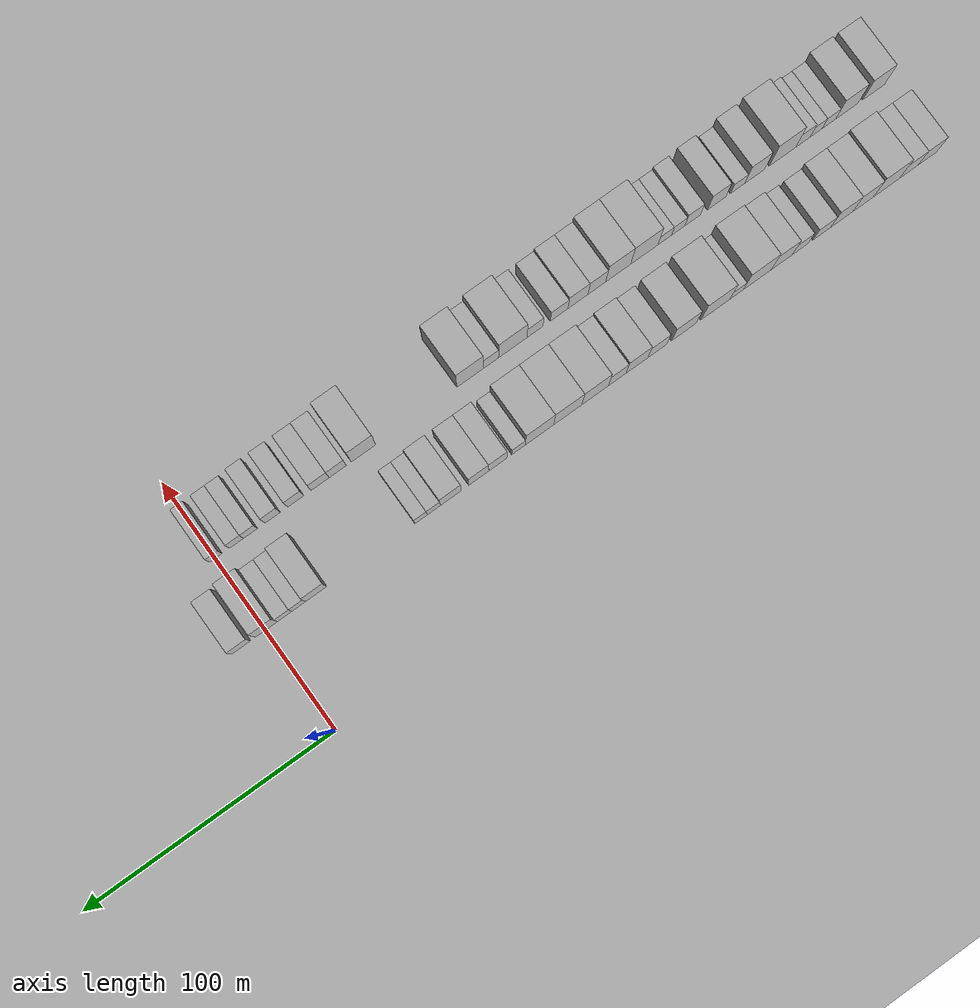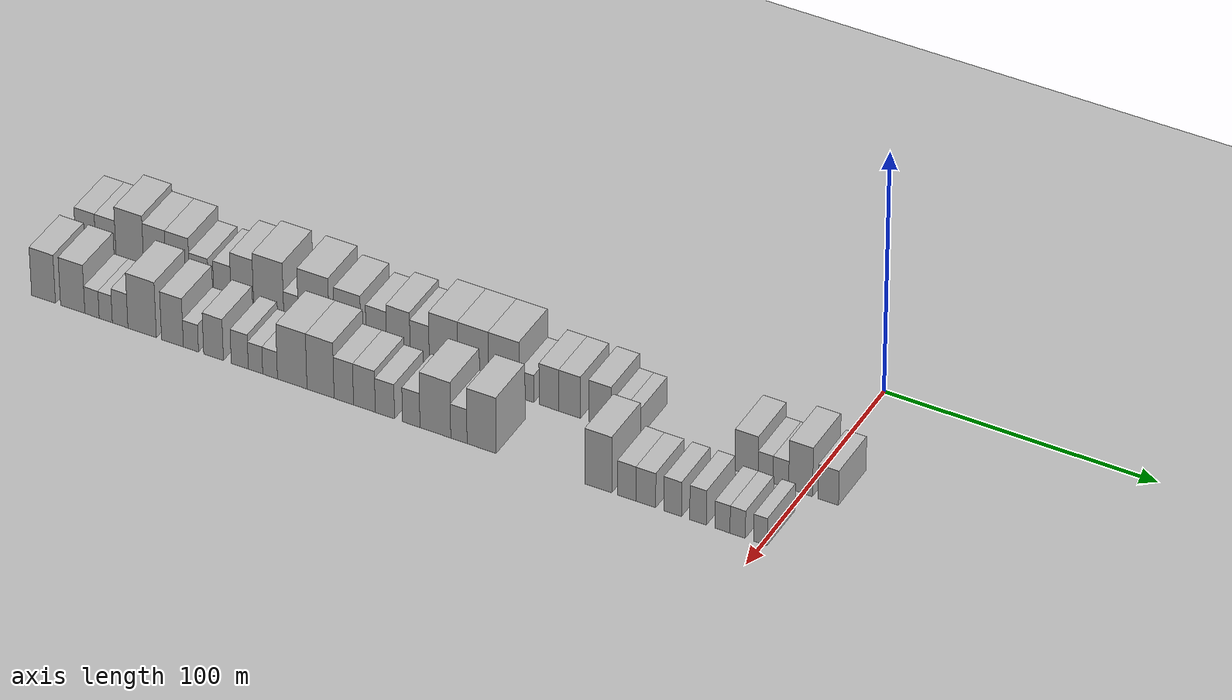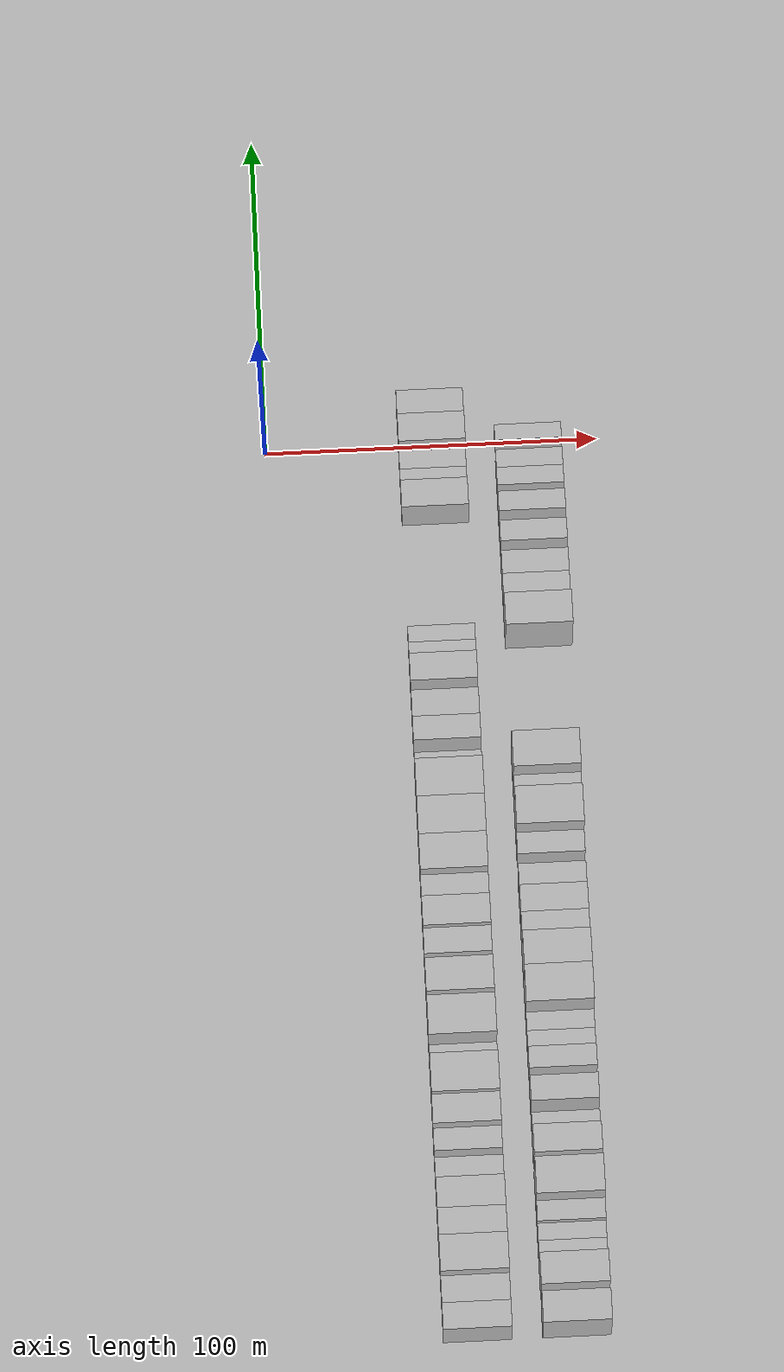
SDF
<sdf version="1.6">
 <world name="default">
  <include><name>ground_plane_1</name><uri>model://HANNAS_ground_plane</uri></include>
  <include>
   <name>ground_plane_2</name>
   <uri>model://HANNAS_ground_plane</uri>
   <pose>100 0 0  0 0 0</pose>
  </include>
  <model name="building_1">
   <static>1</static>
   <pose>50.0000 -272.0312 0 0.000000 0.000000 0.000000</pose>
   <link name="link">
    <pose>0 0 9.00 0 0 0</pose>
    <collision name="collision"><geometry><box><size>20.0000 7.9376 18.0000</size></box></geometry></collision>
    <visual name="visual">
     <cast_shadows>0</cast_shadows>
     <geometry><box><size>20.0000 7.9376 18.0000</size></box></geometry>
     <material>
      <script>
       <uri>model://HANNAS_wall/materials/scripts</uri>
       <uri>model://HANNAS_wall/materials/textures</uri>
       <name>vrc/HANNAS_wall</name>
      </script>
     </material>
    </visual>
   </link>
  </model>
  <model name="building_2">
   <static>1</static>
   <pose>50.0000 -264.0821 0 0.000000 0.000000 0.000000</pose>
   <link name="link">
    <pose>0 0 9.00 0 0 0</pose>
    <collision name="collision"><geometry><box><size>20.0000 7.9607 18.0000</size></box></geometry></collision>
    <visual name="visual">
     <cast_shadows>0</cast_shadows>
     <geometry><box><size>20.0000 7.9607 18.0000</size></box></geometry>
     <material>
      <script>
       <uri>model://HANNAS_wall/materials/scripts</uri>
       <uri>model://HANNAS_wall/materials/textures</uri>
       <name>vrc/HANNAS_wall</name>
      </script>
     </material>
    </visual>
   </link>
  </model>
  <model name="building_3">
   <static>1</static>
   <pose>50.0000 -254.6737 0 0.000000 0.000000 0.000000</pose>
   <link name="link">
    <pose>0 0 12.00 0 0 0</pose>
    <collision name="collision"><geometry><box><size>20.0000 10.8561 24.0000</size></box></geometry></collision>
    <visual name="visual">
     <cast_shadows>0</cast_shadows>
     <geometry><box><size>20.0000 10.8561 24.0000</size></box></geometry>
     <material>
      <script>
       <uri>model://HANNAS_wall/materials/scripts</uri>
       <uri>model://HANNAS_wall/materials/textures</uri>
       <name>vrc/HANNAS_wall</name>
      </script>
     </material>
    </visual>
   </link>
  </model>
  <model name="building_4">
   <static>1</static>
   <pose>50.0000 -244.8792 0 0.000000 0.000000 0.000000</pose>
   <link name="link">
    <pose>0 0 10.50 0 0 0</pose>
    <collision name="collision"><geometry><box><size>20.0000 8.7328 21.0000</size></box></geometry></collision>
    <visual name="visual">
     <cast_shadows>0</cast_shadows>
     <geometry><box><size>20.0000 8.7328 21.0000</size></box></geometry>
     <material>
      <script>
       <uri>model://HANNAS_wall/materials/scripts</uri>
       <uri>model://HANNAS_wall/materials/textures</uri>
       <name>vrc/HANNAS_wall</name>
      </script>
     </material>
    </visual>
   </link>
  </model>
  <model name="building_5">
   <static>1</static>
   <pose>50.0000 -235.9387 0 0.000000 0.000000 0.000000</pose>
   <link name="link">
    <pose>0 0 10.50 0 0 0</pose>
    <collision name="collision"><geometry><box><size>20.0000 9.1483 21.0000</size></box></geometry></collision>
    <visual name="visual">
     <cast_shadows>0</cast_shadows>
     <geometry><box><size>20.0000 9.1483 21.0000</size></box></geometry>
     <material>
      <script>
       <uri>model://HANNAS_wall/materials/scripts</uri>
       <uri>model://HANNAS_wall/materials/textures</uri>
       <name>vrc/HANNAS_wall</name>
      </script>
     </material>
    </visual>
   </link>
  </model>
  <model name="building_6">
   <static>1</static>
   <pose>50.0000 -227.6828 0 0.000000 0.000000 0.000000</pose>
   <link name="link">
    <pose>0 0 7.50 0 0 0</pose>
    <collision name="collision"><geometry><box><size>20.0000 7.3636 15.0000</size></box></geometry></collision>
    <visual name="visual">
     <cast_shadows>0</cast_shadows>
     <geometry><box><size>20.0000 7.3636 15.0000</size></box></geometry>
     <material>
      <script>
       <uri>model://HANNAS_wall/materials/scripts</uri>
       <uri>model://HANNAS_wall/materials/textures</uri>
       <name>vrc/HANNAS_wall</name>
      </script>
     </material>
    </visual>
   </link>
  </model>
  <model name="building_7">
   <static>1</static>
   <pose>50.0000 -218.6321 0 0.000000 0.000000 0.000000</pose>
   <link name="link">
    <pose>0 0 7.50 0 0 0</pose>
    <collision name="collision"><geometry><box><size>20.0000 6.7378 15.0000</size></box></geometry></collision>
    <visual name="visual">
     <cast_shadows>0</cast_shadows>
     <geometry><box><size>20.0000 6.7378 15.0000</size></box></geometry>
     <material>
      <script>
       <uri>model://HANNAS_wall/materials/scripts</uri>
       <uri>model://HANNAS_wall/materials/textures</uri>
       <name>vrc/HANNAS_wall</name>
      </script>
     </material>
    </visual>
   </link>
  </model>
  <model name="building_8">
   <static>1</static>
   <pose>50.0000 -210.8865 0 0.000000 0.000000 0.000000</pose>
   <link name="link">
    <pose>0 0 10.50 0 0 0</pose>
    <collision name="collision"><geometry><box><size>20.0000 8.7534 21.0000</size></box></geometry></collision>
    <visual name="visual">
     <cast_shadows>0</cast_shadows>
     <geometry><box><size>20.0000 8.7534 21.0000</size></box></geometry>
     <material>
      <script>
       <uri>model://HANNAS_wall/materials/scripts</uri>
       <uri>model://HANNAS_wall/materials/textures</uri>
       <name>vrc/HANNAS_wall</name>
      </script>
     </material>
    </visual>
   </link>
  </model>
  <model name="building_9">
   <static>1</static>
   <pose>50.0000 -200.6909 0 0.000000 0.000000 0.000000</pose>
   <link name="link">
    <pose>0 0 12.00 0 0 0</pose>
    <collision name="collision"><geometry><box><size>20.0000 11.6380 24.0000</size></box></geometry></collision>
    <visual name="visual">
     <cast_shadows>0</cast_shadows>
     <geometry><box><size>20.0000 11.6380 24.0000</size></box></geometry>
     <material>
      <script>
       <uri>model://HANNAS_wall/materials/scripts</uri>
       <uri>model://HANNAS_wall/materials/textures</uri>
       <name>vrc/HANNAS_wall</name>
      </script>
     </material>
    </visual>
   </link>
  </model>
  <model name="building_10">
   <static>1</static>
   <pose>50.0000 -192.0684 0 0.000000 0.000000 0.000000</pose>
   <link name="link">
    <pose>0 0 6.00 0 0 0</pose>
    <collision name="collision"><geometry><box><size>20.0000 5.6070 12.0000</size></box></geometry></collision>
    <visual name="visual">
     <cast_shadows>0</cast_shadows>
     <geometry><box><size>20.0000 5.6070 12.0000</size></box></geometry>
     <material>
      <script>
       <uri>model://HANNAS_wall/materials/scripts</uri>
       <uri>model://HANNAS_wall/materials/textures</uri>
       <name>vrc/HANNAS_wall</name>
      </script>
     </material>
    </visual>
   </link>
  </model>
  <model name="building_11">
   <static>1</static>
   <pose>50.0000 -183.3076 0 0.000000 0.000000 0.000000</pose>
   <link name="link">
    <pose>0 0 12.00 0 0 0</pose>
    <collision name="collision"><geometry><box><size>20.0000 11.9145 24.0000</size></box></geometry></collision>
    <visual name="visual">
     <cast_shadows>0</cast_shadows>
     <geometry><box><size>20.0000 11.9145 24.0000</size></box></geometry>
     <material>
      <script>
       <uri>model://HANNAS_wall/materials/scripts</uri>
       <uri>model://HANNAS_wall/materials/textures</uri>
       <name>vrc/HANNAS_wall</name>
      </script>
     </material>
    </visual>
   </link>
  </model>
  <model name="building_12">
   <static>1</static>
   <pose>50.0000 -170.2685 0 0.000000 0.000000 0.000000</pose>
   <link name="link">
    <pose>0 0 10.50 0 0 0</pose>
    <collision name="collision"><geometry><box><size>20.0000 10.1637 21.0000</size></box></geometry></collision>
    <visual name="visual">
     <cast_shadows>0</cast_shadows>
     <geometry><box><size>20.0000 10.1637 21.0000</size></box></geometry>
     <material>
      <script>
       <uri>model://HANNAS_wall/materials/scripts</uri>
       <uri>model://HANNAS_wall/materials/textures</uri>
       <name>vrc/HANNAS_wall</name>
      </script>
     </material>
    </visual>
   </link>
  </model>
  <model name="building_13">
   <static>1</static>
   <pose>50.0000 -159.2767 0 0.000000 0.000000 0.000000</pose>
   <link name="link">
    <pose>0 0 9.00 0 0 0</pose>
    <collision name="collision"><geometry><box><size>20.0000 7.8200 18.0000</size></box></geometry></collision>
    <visual name="visual">
     <cast_shadows>0</cast_shadows>
     <geometry><box><size>20.0000 7.8200 18.0000</size></box></geometry>
     <material>
      <script>
       <uri>model://HANNAS_wall/materials/scripts</uri>
       <uri>model://HANNAS_wall/materials/textures</uri>
       <name>vrc/HANNAS_wall</name>
      </script>
     </material>
    </visual>
   </link>
  </model>
  <model name="building_14">
   <static>1</static>
   <pose>50.0000 -150.8688 0 0.000000 0.000000 0.000000</pose>
   <link name="link">
    <pose>0 0 10.50 0 0 0</pose>
    <collision name="collision"><geometry><box><size>20.0000 8.9957 21.0000</size></box></geometry></collision>
    <visual name="visual">
     <cast_shadows>0</cast_shadows>
     <geometry><box><size>20.0000 8.9957 21.0000</size></box></geometry>
     <material>
      <script>
       <uri>model://HANNAS_wall/materials/scripts</uri>
       <uri>model://HANNAS_wall/materials/textures</uri>
       <name>vrc/HANNAS_wall</name>
      </script>
     </material>
    </visual>
   </link>
  </model>
  <model name="building_15">
   <static>1</static>
   <pose>50.0000 -142.7405 0 0.000000 0.000000 0.000000</pose>
   <link name="link">
    <pose>0 0 9.00 0 0 0</pose>
    <collision name="collision"><geometry><box><size>20.0000 7.2610 18.0000</size></box></geometry></collision>
    <visual name="visual">
     <cast_shadows>0</cast_shadows>
     <geometry><box><size>20.0000 7.2610 18.0000</size></box></geometry>
     <material>
      <script>
       <uri>model://HANNAS_wall/materials/scripts</uri>
       <uri>model://HANNAS_wall/materials/textures</uri>
       <name>vrc/HANNAS_wall</name>
      </script>
     </material>
    </visual>
   </link>
  </model>
  <model name="building_16">
   <static>1</static>
   <pose>50.0000 -133.6735 0 0.000000 0.000000 0.000000</pose>
   <link name="link">
    <pose>0 0 12.00 0 0 0</pose>
    <collision name="collision"><geometry><box><size>20.0000 10.8730 24.0000</size></box></geometry></collision>
    <visual name="visual">
     <cast_shadows>0</cast_shadows>
     <geometry><box><size>20.0000 10.8730 24.0000</size></box></geometry>
     <material>
      <script>
       <uri>model://HANNAS_wall/materials/scripts</uri>
       <uri>model://HANNAS_wall/materials/textures</uri>
       <name>vrc/HANNAS_wall</name>
      </script>
     </material>
    </visual>
   </link>
  </model>
  <model name="building_17">
   <static>1</static>
   <pose>50.0000 -122.4507 0 0.000000 0.000000 0.000000</pose>
   <link name="link">
    <pose>0 0 12.00 0 0 0</pose>
    <collision name="collision"><geometry><box><size>20.0000 11.5726 24.0000</size></box></geometry></collision>
    <visual name="visual">
     <cast_shadows>0</cast_shadows>
     <geometry><box><size>20.0000 11.5726 24.0000</size></box></geometry>
     <material>
      <script>
       <uri>model://HANNAS_wall/materials/scripts</uri>
       <uri>model://HANNAS_wall/materials/textures</uri>
       <name>vrc/HANNAS_wall</name>
      </script>
     </material>
    </visual>
   </link>
  </model>
  <model name="building_18">
   <static>1</static>
   <pose>50.0000 -110.8684 0 0.000000 0.000000 0.000000</pose>
   <link name="link">
    <pose>0 0 12.00 0 0 0</pose>
    <collision name="collision"><geometry><box><size>20.0000 11.5920 24.0000</size></box></geometry></collision>
    <visual name="visual">
     <cast_shadows>0</cast_shadows>
     <geometry><box><size>20.0000 11.5920 24.0000</size></box></geometry>
     <material>
      <script>
       <uri>model://HANNAS_wall/materials/scripts</uri>
       <uri>model://HANNAS_wall/materials/textures</uri>
       <name>vrc/HANNAS_wall</name>
      </script>
     </material>
    </visual>
   </link>
  </model>
  <model name="building_19">
   <static>1</static>
   <pose>50.0000 -102.3278 0 0.000000 0.000000 0.000000</pose>
   <link name="link">
    <pose>0 0 6.00 0 0 0</pose>
    <collision name="collision"><geometry><box><size>20.0000 5.4891 12.0000</size></box></geometry></collision>
    <visual name="visual">
     <cast_shadows>0</cast_shadows>
     <geometry><box><size>20.0000 5.4891 12.0000</size></box></geometry>
     <material>
      <script>
       <uri>model://HANNAS_wall/materials/scripts</uri>
       <uri>model://HANNAS_wall/materials/textures</uri>
       <name>vrc/HANNAS_wall</name>
      </script>
     </material>
    </visual>
   </link>
  </model>
  <model name="building_20">
   <static>1</static>
   <pose>50.0000 -93.8886 0 0.000000 0.000000 0.000000</pose>
   <link name="link">
    <pose>0 0 9.00 0 0 0</pose>
    <collision name="collision"><geometry><box><size>20.0000 7.3894 18.0000</size></box></geometry></collision>
    <visual name="visual">
     <cast_shadows>0</cast_shadows>
     <geometry><box><size>20.0000 7.3894 18.0000</size></box></geometry>
     <material>
      <script>
       <uri>model://HANNAS_wall/materials/scripts</uri>
       <uri>model://HANNAS_wall/materials/textures</uri>
       <name>vrc/HANNAS_wall</name>
      </script>
     </material>
    </visual>
   </link>
  </model>
  <model name="building_21">
   <static>1</static>
   <pose>50.0000 -86.1221 0 0.000000 0.000000 0.000000</pose>
   <link name="link">
    <pose>0 0 9.00 0 0 0</pose>
    <collision name="collision"><geometry><box><size>20.0000 8.1436 18.0000</size></box></geometry></collision>
    <visual name="visual">
     <cast_shadows>0</cast_shadows>
     <geometry><box><size>20.0000 8.1436 18.0000</size></box></geometry>
     <material>
      <script>
       <uri>model://HANNAS_wall/materials/scripts</uri>
       <uri>model://HANNAS_wall/materials/textures</uri>
       <name>vrc/HANNAS_wall</name>
      </script>
     </material>
    </visual>
   </link>
  </model>
  <model name="building_22">
   <static>1</static>
   <pose>50.0000 -74.8031 0 0.000000 0.000000 0.000000</pose>
   <link name="link">
    <pose>0 0 9.00 0 0 0</pose>
    <collision name="collision"><geometry><box><size>20.0000 8.4944 18.0000</size></box></geometry></collision>
    <visual name="visual">
     <cast_shadows>0</cast_shadows>
     <geometry><box><size>20.0000 8.4944 18.0000</size></box></geometry>
     <material>
      <script>
       <uri>model://HANNAS_wall/materials/scripts</uri>
       <uri>model://HANNAS_wall/materials/textures</uri>
       <name>vrc/HANNAS_wall</name>
      </script>
     </material>
    </visual>
   </link>
  </model>
  <model name="building_23">
   <static>1</static>
   <pose>50.0000 -67.8921 0 0.000000 0.000000 0.000000</pose>
   <link name="link">
    <pose>0 0 6.00 0 0 0</pose>
    <collision name="collision"><geometry><box><size>20.0000 5.3276 12.0000</size></box></geometry></collision>
    <visual name="visual">
     <cast_shadows>0</cast_shadows>
     <geometry><box><size>20.0000 5.3276 12.0000</size></box></geometry>
     <material>
      <script>
       <uri>model://HANNAS_wall/materials/scripts</uri>
       <uri>model://HANNAS_wall/materials/textures</uri>
       <name>vrc/HANNAS_wall</name>
      </script>
     </material>
    </visual>
   </link>
  </model>
  <model name="building_24">
   <static>1</static>
   <pose>50.0000 -62.7236 0 0.000000 0.000000 0.000000</pose>
   <link name="link">
    <pose>0 0 6.00 0 0 0</pose>
    <collision name="collision"><geometry><box><size>20.0000 5.0095 12.0000</size></box></geometry></collision>
    <visual name="visual">
     <cast_shadows>0</cast_shadows>
     <geometry><box><size>20.0000 5.0095 12.0000</size></box></geometry>
     <material>
      <script>
       <uri>model://HANNAS_wall/materials/scripts</uri>
       <uri>model://HANNAS_wall/materials/textures</uri>
       <name>vrc/HANNAS_wall</name>
      </script>
     </material>
    </visual>
   </link>
  </model>
  <model name="building_25">
   <static>1</static>
   <pose>50.0000 -20.4532 0 0.000000 0.000000 0.000000</pose>
   <link name="link">
    <pose>0 0 9.00 0 0 0</pose>
    <collision name="collision"><geometry><box><size>20.0000 8.5104 18.0000</size></box></geometry></collision>
    <visual name="visual">
     <cast_shadows>0</cast_shadows>
     <geometry><box><size>20.0000 8.5104 18.0000</size></box></geometry>
     <material>
      <script>
       <uri>model://HANNAS_wall/materials/scripts</uri>
       <uri>model://HANNAS_wall/materials/textures</uri>
       <name>vrc/HANNAS_wall</name>
      </script>
     </material>
    </visual>
   </link>
  </model>
  <model name="building_26">
   <static>1</static>
   <pose>50.0000 -13.4465 0 0.000000 0.000000 0.000000</pose>
   <link name="link">
    <pose>0 0 6.00 0 0 0</pose>
    <collision name="collision"><geometry><box><size>20.0000 5.5029 12.0000</size></box></geometry></collision>
    <visual name="visual">
     <cast_shadows>0</cast_shadows>
     <geometry><box><size>20.0000 5.5029 12.0000</size></box></geometry>
     <material>
      <script>
       <uri>model://HANNAS_wall/materials/scripts</uri>
       <uri>model://HANNAS_wall/materials/textures</uri>
       <name>vrc/HANNAS_wall</name>
      </script>
     </material>
    </visual>
   </link>
  </model>
  <model name="building_27">
   <static>1</static>
   <pose>50.0000 -7.8322 0 0.000000 0.000000 0.000000</pose>
   <link name="link">
    <pose>0 0 6.00 0 0 0</pose>
    <collision name="collision"><geometry><box><size>20.0000 5.7257 12.0000</size></box></geometry></collision>
    <visual name="visual">
     <cast_shadows>0</cast_shadows>
     <geometry><box><size>20.0000 5.7257 12.0000</size></box></geometry>
     <material>
      <script>
       <uri>model://HANNAS_wall/materials/scripts</uri>
       <uri>model://HANNAS_wall/materials/textures</uri>
       <name>vrc/HANNAS_wall</name>
      </script>
     </material>
    </visual>
   </link>
  </model>
  <model name="building_28">
   <static>1</static>
   <pose>50.0000 -0.5983 0 0.000000 0.000000 0.000000</pose>
   <link name="link">
    <pose>0 0 10.50 0 0 0</pose>
    <collision name="collision"><geometry><box><size>20.0000 8.7422 21.0000</size></box></geometry></collision>
    <visual name="visual">
     <cast_shadows>0</cast_shadows>
     <geometry><box><size>20.0000 8.7422 21.0000</size></box></geometry>
     <material>
      <script>
       <uri>model://HANNAS_wall/materials/scripts</uri>
       <uri>model://HANNAS_wall/materials/textures</uri>
       <name>vrc/HANNAS_wall</name>
      </script>
     </material>
    </visual>
   </link>
  </model>
  <model name="building_29">
   <static>1</static>
   <pose>50.0000 9.5227 0 0.000000 0.000000 0.000000</pose>
   <link name="link">
    <pose>0 0 7.50 0 0 0</pose>
    <collision name="collision"><geometry><box><size>20.0000 7.4998 15.0000</size></box></geometry></collision>
    <visual name="visual">
     <cast_shadows>0</cast_shadows>
     <geometry><box><size>20.0000 7.4998 15.0000</size></box></geometry>
     <material>
      <script>
       <uri>model://HANNAS_wall/materials/scripts</uri>
       <uri>model://HANNAS_wall/materials/textures</uri>
       <name>vrc/HANNAS_wall</name>
      </script>
     </material>
    </visual>
   </link>
  </model>
  <model name="building_60">
   <static>1</static>
   <pose>79.0000 -271.3377 0 0.000000 0.000000 0.000000</pose>
   <link name="link">
    <pose>0 0 10.50 0 0 0</pose>
    <collision name="collision"><geometry><box><size>20.0000 9.3246 21.0000</size></box></geometry></collision>
    <visual name="visual">
     <cast_shadows>0</cast_shadows>
     <geometry><box><size>20.0000 9.3246 21.0000</size></box></geometry>
     <material>
      <script>
       <uri>model://HANNAS_wall/materials/scripts</uri>
       <uri>model://HANNAS_wall/materials/textures</uri>
       <name>vrc/HANNAS_wall</name>
      </script>
     </material>
    </visual>
   </link>
  </model>
  <model name="building_61">
   <static>1</static>
   <pose>79.0000 -259.9252 0 0.000000 0.000000 0.000000</pose>
   <link name="link">
    <pose>0 0 10.50 0 0 0</pose>
    <collision name="collision"><geometry><box><size>20.0000 9.5004 21.0000</size></box></geometry></collision>
    <visual name="visual">
     <cast_shadows>0</cast_shadows>
     <geometry><box><size>20.0000 9.5004 21.0000</size></box></geometry>
     <material>
      <script>
       <uri>model://HANNAS_wall/materials/scripts</uri>
       <uri>model://HANNAS_wall/materials/textures</uri>
       <name>vrc/HANNAS_wall</name>
      </script>
     </material>
    </visual>
   </link>
  </model>
  <model name="building_62">
   <static>1</static>
   <pose>79.0000 -252.3836 0 0.000000 0.000000 0.000000</pose>
   <link name="link">
    <pose>0 0 6.00 0 0 0</pose>
    <collision name="collision"><geometry><box><size>20.0000 5.5828 12.0000</size></box></geometry></collision>
    <visual name="visual">
     <cast_shadows>0</cast_shadows>
     <geometry><box><size>20.0000 5.5828 12.0000</size></box></geometry>
     <material>
      <script>
       <uri>model://HANNAS_wall/materials/scripts</uri>
       <uri>model://HANNAS_wall/materials/textures</uri>
       <name>vrc/HANNAS_wall</name>
      </script>
     </material>
    </visual>
   </link>
  </model>
  <model name="building_63">
   <static>1</static>
   <pose>79.0000 -247.0357 0 0.000000 0.000000 0.000000</pose>
   <link name="link">
    <pose>0 0 6.00 0 0 0</pose>
    <collision name="collision"><geometry><box><size>20.0000 5.1130 12.0000</size></box></geometry></collision>
    <visual name="visual">
     <cast_shadows>0</cast_shadows>
     <geometry><box><size>20.0000 5.1130 12.0000</size></box></geometry>
     <material>
      <script>
       <uri>model://HANNAS_wall/materials/scripts</uri>
       <uri>model://HANNAS_wall/materials/textures</uri>
       <name>vrc/HANNAS_wall</name>
      </script>
     </material>
    </visual>
   </link>
  </model>
  <model name="building_64">
   <static>1</static>
   <pose>79.0000 -241.4400 0 0.000000 0.000000 0.000000</pose>
   <link name="link">
    <pose>0 0 7.50 0 0 0</pose>
    <collision name="collision"><geometry><box><size>20.0000 6.0784 15.0000</size></box></geometry></collision>
    <visual name="visual">
     <cast_shadows>0</cast_shadows>
     <geometry><box><size>20.0000 6.0784 15.0000</size></box></geometry>
     <material>
      <script>
       <uri>model://HANNAS_wall/materials/scripts</uri>
       <uri>model://HANNAS_wall/materials/textures</uri>
       <name>vrc/HANNAS_wall</name>
      </script>
     </material>
    </visual>
   </link>
  </model>
  <model name="building_65">
   <static>1</static>
   <pose>79.0000 -232.8782 0 0.000000 0.000000 0.000000</pose>
   <link name="link">
    <pose>0 0 12.00 0 0 0</pose>
    <collision name="collision"><geometry><box><size>20.0000 11.0453 24.0000</size></box></geometry></collision>
    <visual name="visual">
     <cast_shadows>0</cast_shadows>
     <geometry><box><size>20.0000 11.0453 24.0000</size></box></geometry>
     <material>
      <script>
       <uri>model://HANNAS_wall/materials/scripts</uri>
       <uri>model://HANNAS_wall/materials/textures</uri>
       <name>vrc/HANNAS_wall</name>
      </script>
     </material>
    </visual>
   </link>
  </model>
  <model name="building_66">
   <static>1</static>
   <pose>79.0000 -221.1347 0 0.000000 0.000000 0.000000</pose>
   <link name="link">
    <pose>0 0 10.50 0 0 0</pose>
    <collision name="collision"><geometry><box><size>20.0000 8.4416 21.0000</size></box></geometry></collision>
    <visual name="visual">
     <cast_shadows>0</cast_shadows>
     <geometry><box><size>20.0000 8.4416 21.0000</size></box></geometry>
     <material>
      <script>
       <uri>model://HANNAS_wall/materials/scripts</uri>
       <uri>model://HANNAS_wall/materials/textures</uri>
       <name>vrc/HANNAS_wall</name>
      </script>
     </material>
    </visual>
   </link>
  </model>
  <model name="building_67">
   <static>1</static>
   <pose>79.0000 -214.0013 0 0.000000 0.000000 0.000000</pose>
   <link name="link">
    <pose>0 0 6.00 0 0 0</pose>
    <collision name="collision"><geometry><box><size>20.0000 5.8251 12.0000</size></box></geometry></collision>
    <visual name="visual">
     <cast_shadows>0</cast_shadows>
     <geometry><box><size>20.0000 5.8251 12.0000</size></box></geometry>
     <material>
      <script>
       <uri>model://HANNAS_wall/materials/scripts</uri>
       <uri>model://HANNAS_wall/materials/textures</uri>
       <name>vrc/HANNAS_wall</name>
      </script>
     </material>
    </visual>
   </link>
  </model>
  <model name="building_68">
   <static>1</static>
   <pose>79.0000 -205.2804 0 0.000000 0.000000 0.000000</pose>
   <link name="link">
    <pose>0 0 9.00 0 0 0</pose>
    <collision name="collision"><geometry><box><size>20.0000 7.6168 18.0000</size></box></geometry></collision>
    <visual name="visual">
     <cast_shadows>0</cast_shadows>
     <geometry><box><size>20.0000 7.6168 18.0000</size></box></geometry>
     <material>
      <script>
       <uri>model://HANNAS_wall/materials/scripts</uri>
       <uri>model://HANNAS_wall/materials/textures</uri>
       <name>vrc/HANNAS_wall</name>
      </script>
     </material>
    </visual>
   </link>
  </model>
  <model name="building_69">
   <static>1</static>
   <pose>79.0000 -195.1986 0 0.000000 0.000000 0.000000</pose>
   <link name="link">
    <pose>0 0 7.50 0 0 0</pose>
    <collision name="collision"><geometry><box><size>20.0000 6.5468 15.0000</size></box></geometry></collision>
    <visual name="visual">
     <cast_shadows>0</cast_shadows>
     <geometry><box><size>20.0000 6.5468 15.0000</size></box></geometry>
     <material>
      <script>
       <uri>model://HANNAS_wall/materials/scripts</uri>
       <uri>model://HANNAS_wall/materials/textures</uri>
       <name>vrc/HANNAS_wall</name>
      </script>
     </material>
    </visual>
   </link>
  </model>
  <model name="building_70">
   <static>1</static>
   <pose>79.0000 -189.1685 0 0.000000 0.000000 0.000000</pose>
   <link name="link">
    <pose>0 0 6.00 0 0 0</pose>
    <collision name="collision"><geometry><box><size>20.0000 5.5134 12.0000</size></box></geometry></collision>
    <visual name="visual">
     <cast_shadows>0</cast_shadows>
     <geometry><box><size>20.0000 5.5134 12.0000</size></box></geometry>
     <material>
      <script>
       <uri>model://HANNAS_wall/materials/scripts</uri>
       <uri>model://HANNAS_wall/materials/textures</uri>
       <name>vrc/HANNAS_wall</name>
      </script>
     </material>
    </visual>
   </link>
  </model>
  <model name="building_71">
   <static>1</static>
   <pose>79.0000 -183.5823 0 0.000000 0.000000 0.000000</pose>
   <link name="link">
    <pose>0 0 6.00 0 0 0</pose>
    <collision name="collision"><geometry><box><size>20.0000 5.6589 12.0000</size></box></geometry></collision>
    <visual name="visual">
     <cast_shadows>0</cast_shadows>
     <geometry><box><size>20.0000 5.6589 12.0000</size></box></geometry>
     <material>
      <script>
       <uri>model://HANNAS_wall/materials/scripts</uri>
       <uri>model://HANNAS_wall/materials/textures</uri>
       <name>vrc/HANNAS_wall</name>
      </script>
     </material>
    </visual>
   </link>
  </model>
  <model name="building_72">
   <static>1</static>
   <pose>79.0000 -175.1090 0 0.000000 0.000000 0.000000</pose>
   <link name="link">
    <pose>0 0 12.00 0 0 0</pose>
    <collision name="collision"><geometry><box><size>20.0000 11.2878 24.0000</size></box></geometry></collision>
    <visual name="visual">
     <cast_shadows>0</cast_shadows>
     <geometry><box><size>20.0000 11.2878 24.0000</size></box></geometry>
     <material>
      <script>
       <uri>model://HANNAS_wall/materials/scripts</uri>
       <uri>model://HANNAS_wall/materials/textures</uri>
       <name>vrc/HANNAS_wall</name>
      </script>
     </material>
    </visual>
   </link>
  </model>
  <model name="building_73">
   <static>1</static>
   <pose>79.0000 -164.2979 0 0.000000 0.000000 0.000000</pose>
   <link name="link">
    <pose>0 0 12.00 0 0 0</pose>
    <collision name="collision"><geometry><box><size>20.0000 10.3344 24.0000</size></box></geometry></collision>
    <visual name="visual">
     <cast_shadows>0</cast_shadows>
     <geometry><box><size>20.0000 10.3344 24.0000</size></box></geometry>
     <material>
      <script>
       <uri>model://HANNAS_wall/materials/scripts</uri>
       <uri>model://HANNAS_wall/materials/textures</uri>
       <name>vrc/HANNAS_wall</name>
      </script>
     </material>
    </visual>
   </link>
  </model>
  <model name="building_74">
   <static>1</static>
   <pose>79.0000 -155.4454 0 0.000000 0.000000 0.000000</pose>
   <link name="link">
    <pose>0 0 9.00 0 0 0</pose>
    <collision name="collision"><geometry><box><size>20.0000 7.3706 18.0000</size></box></geometry></collision>
    <visual name="visual">
     <cast_shadows>0</cast_shadows>
     <geometry><box><size>20.0000 7.3706 18.0000</size></box></geometry>
     <material>
      <script>
       <uri>model://HANNAS_wall/materials/scripts</uri>
       <uri>model://HANNAS_wall/materials/textures</uri>
       <name>vrc/HANNAS_wall</name>
      </script>
     </material>
    </visual>
   </link>
  </model>
  <model name="building_75">
   <static>1</static>
   <pose>79.0000 -147.6373 0 0.000000 0.000000 0.000000</pose>
   <link name="link">
    <pose>0 0 9.00 0 0 0</pose>
    <collision name="collision"><geometry><box><size>20.0000 8.2457 18.0000</size></box></geometry></collision>
    <visual name="visual">
     <cast_shadows>0</cast_shadows>
     <geometry><box><size>20.0000 8.2457 18.0000</size></box></geometry>
     <material>
      <script>
       <uri>model://HANNAS_wall/materials/scripts</uri>
       <uri>model://HANNAS_wall/materials/textures</uri>
       <name>vrc/HANNAS_wall</name>
      </script>
     </material>
    </visual>
   </link>
  </model>
  <model name="building_76">
   <static>1</static>
   <pose>79.0000 -139.8728 0 0.000000 0.000000 0.000000</pose>
   <link name="link">
    <pose>0 0 7.50 0 0 0</pose>
    <collision name="collision"><geometry><box><size>20.0000 7.2834 15.0000</size></box></geometry></collision>
    <visual name="visual">
     <cast_shadows>0</cast_shadows>
     <geometry><box><size>20.0000 7.2834 15.0000</size></box></geometry>
     <material>
      <script>
       <uri>model://HANNAS_wall/materials/scripts</uri>
       <uri>model://HANNAS_wall/materials/textures</uri>
       <name>vrc/HANNAS_wall</name>
      </script>
     </material>
    </visual>
   </link>
  </model>
  <model name="building_77">
   <static>1</static>
   <pose>79.0000 -129.9298 0 0.000000 0.000000 0.000000</pose>
   <link name="link">
    <pose>0 0 7.50 0 0 0</pose>
    <collision name="collision"><geometry><box><size>20.0000 6.6025 15.0000</size></box></geometry></collision>
    <visual name="visual">
     <cast_shadows>0</cast_shadows>
     <geometry><box><size>20.0000 6.6025 15.0000</size></box></geometry>
     <material>
      <script>
       <uri>model://HANNAS_wall/materials/scripts</uri>
       <uri>model://HANNAS_wall/materials/textures</uri>
       <name>vrc/HANNAS_wall</name>
      </script>
     </material>
    </visual>
   </link>
  </model>
  <model name="building_78">
   <static>1</static>
   <pose>79.0000 -120.8289 0 0.000000 0.000000 0.000000</pose>
   <link name="link">
    <pose>0 0 12.00 0 0 0</pose>
    <collision name="collision"><geometry><box><size>20.0000 11.5993 24.0000</size></box></geometry></collision>
    <visual name="visual">
     <cast_shadows>0</cast_shadows>
     <geometry><box><size>20.0000 11.5993 24.0000</size></box></geometry>
     <material>
      <script>
       <uri>model://HANNAS_wall/materials/scripts</uri>
       <uri>model://HANNAS_wall/materials/textures</uri>
       <name>vrc/HANNAS_wall</name>
      </script>
     </material>
    </visual>
   </link>
  </model>
  <model name="building_79">
   <static>1</static>
   <pose>79.0000 -111.9690 0 0.000000 0.000000 0.000000</pose>
   <link name="link">
    <pose>0 0 7.50 0 0 0</pose>
    <collision name="collision"><geometry><box><size>20.0000 6.1206 15.0000</size></box></geometry></collision>
    <visual name="visual">
     <cast_shadows>0</cast_shadows>
     <geometry><box><size>20.0000 6.1206 15.0000</size></box></geometry>
     <material>
      <script>
       <uri>model://HANNAS_wall/materials/scripts</uri>
       <uri>model://HANNAS_wall/materials/textures</uri>
       <name>vrc/HANNAS_wall</name>
      </script>
     </material>
    </visual>
   </link>
  </model>
  <model name="building_80">
   <static>1</static>
   <pose>79.0000 -103.4311 0 0.000000 0.000000 0.000000</pose>
   <link name="link">
    <pose>0 0 12.00 0 0 0</pose>
    <collision name="collision"><geometry><box><size>20.0000 10.9552 24.0000</size></box></geometry></collision>
    <visual name="visual">
     <cast_shadows>0</cast_shadows>
     <geometry><box><size>20.0000 10.9552 24.0000</size></box></geometry>
     <material>
      <script>
       <uri>model://HANNAS_wall/materials/scripts</uri>
       <uri>model://HANNAS_wall/materials/textures</uri>
       <name>vrc/HANNAS_wall</name>
      </script>
     </material>
    </visual>
   </link>
  </model>
  <model name="building_81">
   <static>1</static>
   <pose>79.0000 -59.9720 0 0.000000 0.000000 0.000000</pose>
   <link name="link">
    <pose>0 0 12.00 0 0 0</pose>
    <collision name="collision"><geometry><box><size>20.0000 9.9876 24.0000</size></box></geometry></collision>
    <visual name="visual">
     <cast_shadows>0</cast_shadows>
     <geometry><box><size>20.0000 9.9876 24.0000</size></box></geometry>
     <material>
      <script>
       <uri>model://HANNAS_wall/materials/scripts</uri>
       <uri>model://HANNAS_wall/materials/textures</uri>
       <name>vrc/HANNAS_wall</name>
      </script>
     </material>
    </visual>
   </link>
  </model>
  <model name="building_82">
   <static>1</static>
   <pose>79.0000 -49.5220 0 0.000000 0.000000 0.000000</pose>
   <link name="link">
    <pose>0 0 7.50 0 0 0</pose>
    <collision name="collision"><geometry><box><size>20.0000 6.9124 15.0000</size></box></geometry></collision>
    <visual name="visual">
     <cast_shadows>0</cast_shadows>
     <geometry><box><size>20.0000 6.9124 15.0000</size></box></geometry>
     <material>
      <script>
       <uri>model://HANNAS_wall/materials/scripts</uri>
       <uri>model://HANNAS_wall/materials/textures</uri>
       <name>vrc/HANNAS_wall</name>
      </script>
     </material>
    </visual>
   </link>
  </model>
  <model name="building_83">
   <static>1</static>
   <pose>79.0000 -42.4310 0 0.000000 0.000000 0.000000</pose>
   <link name="link">
    <pose>0 0 7.50 0 0 0</pose>
    <collision name="collision"><geometry><box><size>20.0000 7.2695 15.0000</size></box></geometry></collision>
    <visual name="visual">
     <cast_shadows>0</cast_shadows>
     <geometry><box><size>20.0000 7.2695 15.0000</size></box></geometry>
     <material>
      <script>
       <uri>model://HANNAS_wall/materials/scripts</uri>
       <uri>model://HANNAS_wall/materials/textures</uri>
       <name>vrc/HANNAS_wall</name>
      </script>
     </material>
    </visual>
   </link>
  </model>
  <model name="building_84">
   <static>1</static>
   <pose>79.0000 -32.5478 0 0.000000 0.000000 0.000000</pose>
   <link name="link">
    <pose>0 0 7.50 0 0 0</pose>
    <collision name="collision"><geometry><box><size>20.0000 6.4969 15.0000</size></box></geometry></collision>
    <visual name="visual">
     <cast_shadows>0</cast_shadows>
     <geometry><box><size>20.0000 6.4969 15.0000</size></box></geometry>
     <material>
      <script>
       <uri>model://HANNAS_wall/materials/scripts</uri>
       <uri>model://HANNAS_wall/materials/textures</uri>
       <name>vrc/HANNAS_wall</name>
      </script>
     </material>
    </visual>
   </link>
  </model>
  <model name="building_85">
   <static>1</static>
   <pose>79.0000 -23.2210 0 0.000000 0.000000 0.000000</pose>
   <link name="link">
    <pose>0 0 7.50 0 0 0</pose>
    <collision name="collision"><geometry><box><size>20.0000 6.1567 15.0000</size></box></geometry></collision>
    <visual name="visual">
     <cast_shadows>0</cast_shadows>
     <geometry><box><size>20.0000 6.1567 15.0000</size></box></geometry>
     <material>
      <script>
       <uri>model://HANNAS_wall/materials/scripts</uri>
       <uri>model://HANNAS_wall/materials/textures</uri>
       <name>vrc/HANNAS_wall</name>
      </script>
     </material>
    </visual>
   </link>
  </model>
  <model name="building_86">
   <static>1</static>
   <pose>79.0000 -14.3555 0 0.000000 0.000000 0.000000</pose>
   <link name="link">
    <pose>0 0 6.00 0 0 0</pose>
    <collision name="collision"><geometry><box><size>20.0000 5.5742 12.0000</size></box></geometry></collision>
    <visual name="visual">
     <cast_shadows>0</cast_shadows>
     <geometry><box><size>20.0000 5.5742 12.0000</size></box></geometry>
     <material>
      <script>
       <uri>model://HANNAS_wall/materials/scripts</uri>
       <uri>model://HANNAS_wall/materials/textures</uri>
       <name>vrc/HANNAS_wall</name>
      </script>
     </material>
    </visual>
   </link>
  </model>
  <model name="building_87">
   <static>1</static>
   <pose>79.0000 -8.7597 0 0.000000 0.000000 0.000000</pose>
   <link name="link">
    <pose>0 0 6.00 0 0 0</pose>
    <collision name="collision"><geometry><box><size>20.0000 5.6173 12.0000</size></box></geometry></collision>
    <visual name="visual">
     <cast_shadows>0</cast_shadows>
     <geometry><box><size>20.0000 5.6173 12.0000</size></box></geometry>
     <material>
      <script>
       <uri>model://HANNAS_wall/materials/scripts</uri>
       <uri>model://HANNAS_wall/materials/textures</uri>
       <name>vrc/HANNAS_wall</name>
      </script>
     </material>
    </visual>
   </link>
  </model>
  <model name="building_88">
   <static>1</static>
   <pose>79.0000 -0.4767 0 0.000000 0.000000 0.000000</pose>
   <link name="link">
    <pose>0 0 6.00 0 0 0</pose>
    <collision name="collision"><geometry><box><size>20.0000 4.9488 12.0000</size></box></geometry></collision>
    <visual name="visual">
     <cast_shadows>0</cast_shadows>
     <geometry><box><size>20.0000 4.9488 12.0000</size></box></geometry>
     <material>
      <script>
       <uri>model://HANNAS_wall/materials/scripts</uri>
       <uri>model://HANNAS_wall/materials/textures</uri>
       <name>vrc/HANNAS_wall</name>
      </script>
     </material>
    </visual>
   </link>
  </model>
 </world>
</sdf>
